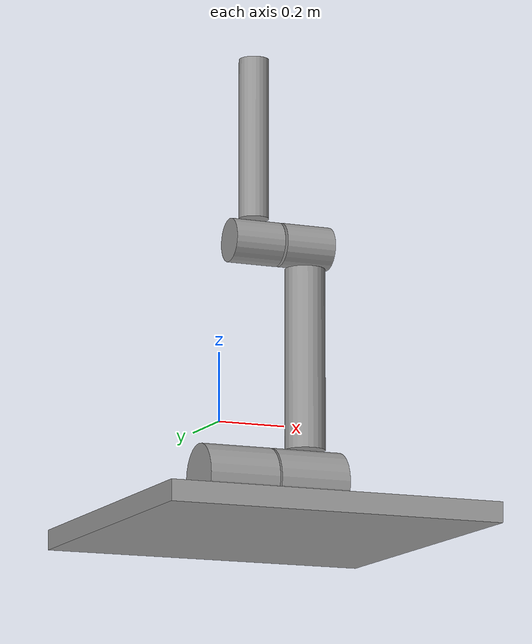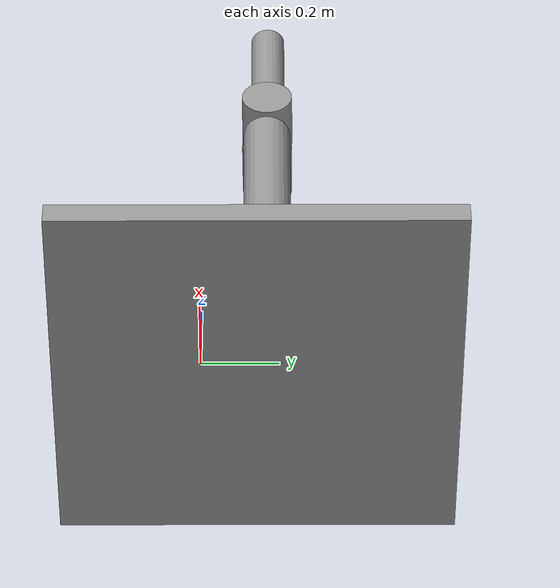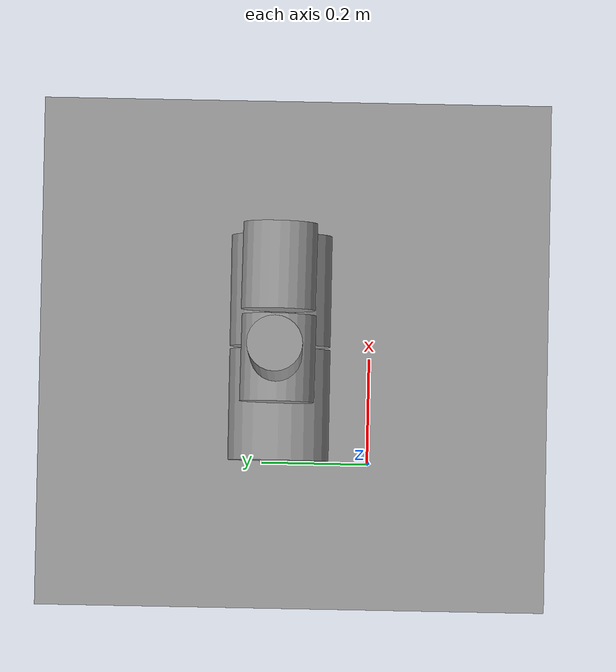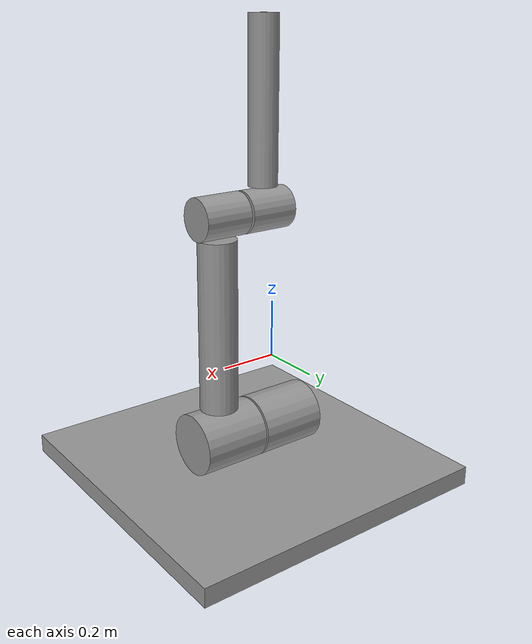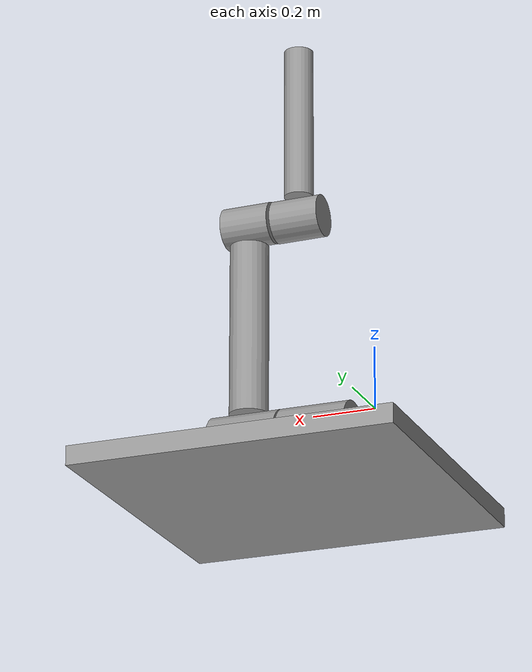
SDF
<?xml version='1.0'?>
<sdf version='1.6'>
  <model name='Arm'>
    <link name='link_0'>
      <inertial>
        <mass>10000</mass>
        <inertia>
          <ixx>836.333</ixx>
          <ixy>0</ixy>
          <ixz>0</ixz>
          <iyy>836.333</iyy>
          <iyz>0</iyz>
          <izz>1666.67</izz>
        </inertia>
        <pose frame=''>0 0 0 0 -0 0</pose>
      </inertial>
      <pose frame=''>0.216756 0.143753 -0.267273 0 -0 0</pose>
      <gravity>1</gravity>
      <self_collide>0</self_collide>
      <kinematic>0</kinematic>
      <enable_wind>0</enable_wind>
      <visual name='visual'>
        <pose frame=''>0 0 0 0 -0 0</pose>
        <geometry>
          <box>
            <size>1 1 0.06</size>
          </box>
        </geometry>
        <material>
          <lighting>1</lighting>
          <script>
            <uri>file://media/materials/scripts/gazebo.material</uri>
            <name>Gazebo/Grey</name>
          </script>
          <shader type='vertex'>
            <normal_map>__default__</normal_map>
          </shader>
          <ambient>0.3 0.3 0.3 1</ambient>
          <diffuse>0.7 0.7 0.7 1</diffuse>
          <specular>0.01 0.01 0.01 1</specular>
          <emissive>0 0 0 1</emissive>
        </material>
        <transparency>0</transparency>
        <cast_shadows>1</cast_shadows>
      </visual>
      <collision name='collision'>
        <laser_retro>0</laser_retro>
        <max_contacts>10</max_contacts>
        <pose frame=''>0 0 0 0 -0 0</pose>
        <geometry>
          <box>
            <size>1 1 0.06</size>
          </box>
        </geometry>
        <surface>
          <friction>
            <ode>
              <mu>1</mu>
              <mu2>1</mu2>
              <fdir1>0 0 0</fdir1>
              <slip1>0</slip1>
              <slip2>0</slip2>
            </ode>
            <torsional>
              <coefficient>1</coefficient>
              <patch_radius>0</patch_radius>
              <surface_radius>0</surface_radius>
              <use_patch_radius>1</use_patch_radius>
              <ode>
                <slip>0</slip>
              </ode>
            </torsional>
          </friction>
          <bounce>
            <restitution_coefficient>0</restitution_coefficient>
            <threshold>1e+06</threshold>
          </bounce>
          <contact>
            <collide_without_contact>0</collide_without_contact>
            <collide_without_contact_bitmask>1</collide_without_contact_bitmask>
            <collide_bitmask>1</collide_bitmask>
            <ode>
              <soft_cfm>0</soft_cfm>
              <soft_erp>0.2</soft_erp>
              <kp>1e+13</kp>
              <kd>1</kd>
              <max_vel>0.01</max_vel>
              <min_depth>0</min_depth>
            </ode>
            <bullet>
              <split_impulse>1</split_impulse>
              <split_impulse_penetration_threshold>-0.01</split_impulse_penetration_threshold>
              <soft_cfm>0</soft_cfm>
              <soft_erp>0.2</soft_erp>
              <kp>1e+13</kp>
              <kd>1</kd>
            </bullet>
          </contact>
        </surface>
      </collision>
    </link>
    <link name='link_1'>
      <inertial>
        <mass>3.395</mass>
        <inertia>
          <ixx>0.495104</ixx>
          <ixy>0</ixy>
          <ixz>0</ixz>
          <iyy>0.495104</iyy>
          <iyz>0</iyz>
          <izz>0.424375</izz>
        </inertia>
        <pose frame=''>0 0 0 0 -0 0</pose>
      </inertial>
      <pose frame=''>0.340908 0.169744 0.239161 0 -0 0</pose>
      <gravity>1</gravity>
      <self_collide>0</self_collide>
      <kinematic>0</kinematic>
      <enable_wind>0</enable_wind>
      <visual name='visual'>
        <pose frame=''>0 0 0 0 -0 0</pose>
        <geometry>
          <cylinder>
            <radius>0.06</radius>
            <length>0.542</length>
          </cylinder>
        </geometry>
        <material>
          <lighting>1</lighting>
          <script>
            <uri>file://media/materials/scripts/gazebo.material</uri>
            <name>Gazebo/Grey</name>
          </script>
          <shader type='vertex'>
            <normal_map>__default__</normal_map>
          </shader>
          <ambient>0.3 0.3 0.3 1</ambient>
          <diffuse>0.7 0.7 0.7 1</diffuse>
          <specular>0.01 0.01 0.01 1</specular>
          <emissive>0 0 0 1</emissive>
        </material>
        <transparency>0</transparency>
        <cast_shadows>1</cast_shadows>
      </visual>
      <collision name='collision'>
        <laser_retro>0</laser_retro>
        <max_contacts>10</max_contacts>
        <pose frame=''>0 0 0 0 -0 0</pose>
        <geometry>
          <cylinder>
            <radius>0.06</radius>
            <length>0.542</length>
          </cylinder>
        </geometry>
        <surface>
          <friction>
            <ode>
              <mu>1</mu>
              <mu2>1</mu2>
              <fdir1>0 0 0</fdir1>
              <slip1>0</slip1>
              <slip2>0</slip2>
            </ode>
            <torsional>
              <coefficient>1</coefficient>
              <patch_radius>0</patch_radius>
              <surface_radius>0</surface_radius>
              <use_patch_radius>1</use_patch_radius>
              <ode>
                <slip>0</slip>
              </ode>
            </torsional>
          </friction>
          <bounce>
            <restitution_coefficient>0</restitution_coefficient>
            <threshold>1e+06</threshold>
          </bounce>
          <contact>
            <collide_without_contact>0</collide_without_contact>
            <collide_without_contact_bitmask>1</collide_without_contact_bitmask>
            <collide_bitmask>1</collide_bitmask>
            <ode>
              <soft_cfm>0</soft_cfm>
              <soft_erp>0.2</soft_erp>
              <kp>1e+13</kp>
              <kd>1</kd>
              <max_vel>0.01</max_vel>
              <min_depth>0</min_depth>
            </ode>
            <bullet>
              <split_impulse>1</split_impulse>
              <split_impulse_penetration_threshold>-0.01</split_impulse_penetration_threshold>
              <soft_cfm>0</soft_cfm>
              <soft_erp>0.2</soft_erp>
              <kp>1e+13</kp>
              <kd>1</kd>
            </bullet>
          </contact>
        </surface>
      </collision>
    </link>
    <link name='link_2'>
      <inertial>
        <mass>1.62</mass>
        <inertia>
          <ixx>0.0329037</ixx>
          <ixy>0</ixy>
          <ixz>0</ixz>
          <iyy>0.0329037</iyy>
          <iyz>0</iyz>
          <izz>0.00164025</izz>
        </inertia>
        <pose frame=''>0 0 0 0 -0 0</pose>
      </inertial>
      <pose frame=''>0.178511 0.173525 0.892871 0 -0 0</pose>
      <gravity>1</gravity>
      <self_collide>0</self_collide>
      <kinematic>0</kinematic>
      <enable_wind>0</enable_wind>
      <visual name='visual'>
        <pose frame=''>0 0 0 0 -0 0</pose>
        <geometry>
          <cylinder>
            <radius>0.045</radius>
            <length>0.4875</length>
          </cylinder>
        </geometry>
        <material>
          <lighting>1</lighting>
          <script>
            <uri>file://media/materials/scripts/gazebo.material</uri>
            <name>Gazebo/Grey</name>
          </script>
          <shader type='vertex'>
            <normal_map>__default__</normal_map>
          </shader>
          <ambient>0.3 0.3 0.3 1</ambient>
          <diffuse>0.7 0.7 0.7 1</diffuse>
          <specular>0.01 0.01 0.01 1</specular>
          <emissive>0 0 0 1</emissive>
        </material>
        <transparency>0</transparency>
        <cast_shadows>1</cast_shadows>
      </visual>
      <collision name='collision'>
        <laser_retro>0</laser_retro>
        <max_contacts>10</max_contacts>
        <pose frame=''>0 0 0 0 -0 0</pose>
        <geometry>
          <cylinder>
            <radius>0.045</radius>
            <length>0.4875</length>
          </cylinder>
        </geometry>
        <surface>
          <friction>
            <ode>
              <mu>1</mu>
              <mu2>1</mu2>
              <fdir1>0 0 0</fdir1>
              <slip1>0</slip1>
              <slip2>0</slip2>
            </ode>
            <torsional>
              <coefficient>1</coefficient>
              <patch_radius>0</patch_radius>
              <surface_radius>0</surface_radius>
              <use_patch_radius>1</use_patch_radius>
              <ode>
                <slip>0</slip>
              </ode>
            </torsional>
          </friction>
          <bounce>
            <restitution_coefficient>0</restitution_coefficient>
            <threshold>1e+06</threshold>
          </bounce>
          <contact>
            <collide_without_contact>0</collide_without_contact>
            <collide_without_contact_bitmask>1</collide_without_contact_bitmask>
            <collide_bitmask>1</collide_bitmask>
            <ode>
              <soft_cfm>0</soft_cfm>
              <soft_erp>0.2</soft_erp>
              <kp>1e+13</kp>
              <kd>1</kd>
              <max_vel>0.01</max_vel>
              <min_depth>0</min_depth>
            </ode>
            <bullet>
              <split_impulse>1</split_impulse>
              <split_impulse_penetration_threshold>-0.01</split_impulse_penetration_threshold>
              <soft_cfm>0</soft_cfm>
              <soft_erp>0.2</soft_erp>
              <kp>1e+13</kp>
              <kd>1</kd>
            </bullet>
          </contact>
        </surface>
      </collision>
    </link>
    <model name='GrossesGelenk'>
      <link name='GrossesGelenk1'>
        <inertial>
          <mass>13</mass>
          <inertia>
            <ixx>1.89583</ixx>
            <ixy>0</ixy>
            <ixz>0</ixz>
            <iyy>1.89583</iyy>
            <iyz>0</iyz>
            <izz>1.625</izz>
          </inertia>
          <pose frame=''>0 0 0 0 -0 0</pose>
        </inertial>
        <pose frame=''>-0.1105 0 0 3.13788 1.57079 3.13788</pose>
        <gravity>1</gravity>
        <self_collide>0</self_collide>
        <kinematic>0</kinematic>
        <enable_wind>0</enable_wind>
        <visual name='visual'>
          <pose frame=''>0 0 0 0 -0 0</pose>
          <geometry>
            <cylinder>
              <radius>0.0975</radius>
              <length>0.215</length>
            </cylinder>
          </geometry>
          <material>
            <lighting>1</lighting>
            <script>
              <uri>file://media/materials/scripts/gazebo.material</uri>
              <name>Gazebo/Grey</name>
            </script>
            <shader type='vertex'>
              <normal_map>__default__</normal_map>
            </shader>
            <ambient>0.3 0.3 0.3 1</ambient>
            <diffuse>0.7 0.7 0.7 1</diffuse>
            <specular>0.01 0.01 0.01 1</specular>
            <emissive>0 0 0 1</emissive>
          </material>
          <transparency>0</transparency>
          <cast_shadows>1</cast_shadows>
        </visual>
        <collision name='collision'>
          <laser_retro>0</laser_retro>
          <max_contacts>10</max_contacts>
          <pose frame=''>0 0 0 0 -0 0</pose>
          <geometry>
            <cylinder>
              <radius>0.0975</radius>
              <length>0.215</length>
            </cylinder>
          </geometry>
          <surface>
            <friction>
              <ode>
                <mu>1</mu>
                <mu2>1</mu2>
                <fdir1>0 0 0</fdir1>
                <slip1>0</slip1>
                <slip2>0</slip2>
              </ode>
              <torsional>
                <coefficient>1</coefficient>
                <patch_radius>0</patch_radius>
                <surface_radius>0</surface_radius>
                <use_patch_radius>1</use_patch_radius>
                <ode>
                  <slip>0</slip>
                </ode>
              </torsional>
            </friction>
            <bounce>
              <restitution_coefficient>0</restitution_coefficient>
              <threshold>1e+06</threshold>
            </bounce>
            <contact>
              <collide_without_contact>0</collide_without_contact>
              <collide_without_contact_bitmask>1</collide_without_contact_bitmask>
              <collide_bitmask>1</collide_bitmask>
              <ode>
                <soft_cfm>0</soft_cfm>
                <soft_erp>0.2</soft_erp>
                <kp>1e+13</kp>
                <kd>1</kd>
                <max_vel>0.01</max_vel>
                <min_depth>0</min_depth>
              </ode>
              <bullet>
                <split_impulse>1</split_impulse>
                <split_impulse_penetration_threshold>-0.01</split_impulse_penetration_threshold>
                <soft_cfm>0</soft_cfm>
                <soft_erp>0.2</soft_erp>
                <kp>1e+13</kp>
                <kd>1</kd>
              </bullet>
            </contact>
          </surface>
        </collision>
      </link>
      <link name='GrossesGelenk2'>
        <inertial>
          <mass>13</mass>
          <inertia>
            <ixx>1.89583</ixx>
            <ixy>0</ixy>
            <ixz>0</ixz>
            <iyy>1.89583</iyy>
            <iyz>0</iyz>
            <izz>1.625</izz>
          </inertia>
          <pose frame=''>0 0 0 0 -0 0</pose>
        </inertial>
        <pose frame=''>0.1105 -0 -0 3.13357 1.57079 3.13357</pose>
        <gravity>1</gravity>
        <self_collide>0</self_collide>
        <kinematic>0</kinematic>
        <enable_wind>0</enable_wind>
        <visual name='visual'>
          <pose frame=''>0 0 0 0 -0 0</pose>
          <geometry>
            <cylinder>
              <radius>0.0975</radius>
              <length>0.215</length>
            </cylinder>
          </geometry>
          <material>
            <lighting>1</lighting>
            <script>
              <uri>file://media/materials/scripts/gazebo.material</uri>
              <name>Gazebo/Grey</name>
            </script>
            <shader type='vertex'>
              <normal_map>__default__</normal_map>
            </shader>
            <ambient>0.3 0.3 0.3 1</ambient>
            <diffuse>0.7 0.7 0.7 1</diffuse>
            <specular>0.01 0.01 0.01 1</specular>
            <emissive>0 0 0 1</emissive>
          </material>
          <transparency>0</transparency>
          <cast_shadows>1</cast_shadows>
        </visual>
        <collision name='collision'>
          <laser_retro>0</laser_retro>
          <max_contacts>10</max_contacts>
          <pose frame=''>0 0 0 0 -0 0</pose>
          <geometry>
            <cylinder>
              <radius>0.0975</radius>
              <length>0.215</length>
            </cylinder>
          </geometry>
          <surface>
            <friction>
              <ode>
                <mu>1</mu>
                <mu2>1</mu2>
                <fdir1>0 0 0</fdir1>
                <slip1>0</slip1>
                <slip2>0</slip2>
              </ode>
              <torsional>
                <coefficient>1</coefficient>
                <patch_radius>0</patch_radius>
                <surface_radius>0</surface_radius>
                <use_patch_radius>1</use_patch_radius>
                <ode>
                  <slip>0</slip>
                </ode>
              </torsional>
            </friction>
            <bounce>
              <restitution_coefficient>0</restitution_coefficient>
              <threshold>1e+06</threshold>
            </bounce>
            <contact>
              <collide_without_contact>0</collide_without_contact>
              <collide_without_contact_bitmask>1</collide_without_contact_bitmask>
              <collide_bitmask>1</collide_bitmask>
              <ode>
                <soft_cfm>0</soft_cfm>
                <soft_erp>0.2</soft_erp>
                <kp>1e+13</kp>
                <kd>1</kd>
                <max_vel>0.01</max_vel>
                <min_depth>0</min_depth>
              </ode>
              <bullet>
                <split_impulse>1</split_impulse>
                <split_impulse_penetration_threshold>-0.01</split_impulse_penetration_threshold>
                <soft_cfm>0</soft_cfm>
                <soft_erp>0.2</soft_erp>
                <kp>1e+13</kp>
                <kd>1</kd>
              </bullet>
            </contact>
          </surface>
        </collision>
      </link>
      <joint name='GrossesGelenkLink' type='revolute'>
        <parent>GrossesGelenk1</parent>
        <child>GrossesGelenk2</child>
        <pose frame=''>-0 0 -0.12 0 -0 0</pose>
        <axis>
          <xyz>0 0 1</xyz>
          <use_parent_model_frame>0</use_parent_model_frame>
          <limit>
            <lower>-1.79769e+308</lower>
            <upper>1.79769e+308</upper>
            <effort>-1</effort>
            <velocity>-1</velocity>
          </limit>
          <dynamics>
            <spring_reference>0</spring_reference>
            <spring_stiffness>0</spring_stiffness>
            <damping>0</damping>
            <friction>0</friction>
          </dynamics>
        </axis>
        <physics>
          <ode>
            <limit>
              <cfm>0</cfm>
              <erp>0.2</erp>
            </limit>
            <suspension>
              <cfm>0</cfm>
              <erp>0.2</erp>
            </suspension>
          </ode>
        </physics>
      </joint>
      <static>0</static>
      <allow_auto_disable>1</allow_auto_disable>
      <pose frame=''>0.224339 0.170369 -0.131128 0 -0 0</pose>
    </model>
    <model name='MittleresGelenk'>
      <link name='MittleresGelenk1'>
        <inertial>
          <mass>5.27</mass>
          <inertia>
            <ixx>1.89583</ixx>
            <ixy>0</ixy>
            <ixz>0</ixz>
            <iyy>1.89583</iyy>
            <iyz>0</iyz>
            <izz>1.625</izz>
          </inertia>
          <pose frame=''>0 0 0 0 -0 0</pose>
        </inertial>
        <pose frame=''>-0.1105 0 -0 3.01682 1.56535 3.00517</pose>
        <gravity>1</gravity>
        <self_collide>0</self_collide>
        <kinematic>0</kinematic>
        <enable_wind>0</enable_wind>
        <visual name='visual'>
          <pose frame=''>0 0 0 0 -0 0</pose>
          <geometry>
            <cylinder>
              <radius>0.065</radius>
              <length>0.152</length>
            </cylinder>
          </geometry>
          <material>
            <lighting>1</lighting>
            <script>
              <uri>file://media/materials/scripts/gazebo.material</uri>
              <name>Gazebo/Grey</name>
            </script>
            <shader type='vertex'>
              <normal_map>__default__</normal_map>
            </shader>
            <ambient>0.3 0.3 0.3 1</ambient>
            <diffuse>0.7 0.7 0.7 1</diffuse>
            <specular>0.01 0.01 0.01 1</specular>
            <emissive>0 0 0 1</emissive>
          </material>
          <transparency>0</transparency>
          <cast_shadows>1</cast_shadows>
        </visual>
        <collision name='collision'>
          <laser_retro>0</laser_retro>
          <max_contacts>10</max_contacts>
          <pose frame=''>0 0 0 0 -0 0</pose>
          <geometry>
            <cylinder>
              <radius>0.065</radius>
              <length>0.152</length>
            </cylinder>
          </geometry>
          <surface>
            <friction>
              <ode>
                <mu>1</mu>
                <mu2>1</mu2>
                <fdir1>0 0 0</fdir1>
                <slip1>0</slip1>
                <slip2>0</slip2>
              </ode>
              <torsional>
                <coefficient>1</coefficient>
                <patch_radius>0</patch_radius>
                <surface_radius>0</surface_radius>
                <use_patch_radius>1</use_patch_radius>
                <ode>
                  <slip>0</slip>
                </ode>
              </torsional>
            </friction>
            <bounce>
              <restitution_coefficient>0</restitution_coefficient>
              <threshold>1e+06</threshold>
            </bounce>
            <contact>
              <collide_without_contact>0</collide_without_contact>
              <collide_without_contact_bitmask>1</collide_without_contact_bitmask>
              <collide_bitmask>1</collide_bitmask>
              <ode>
                <soft_cfm>0</soft_cfm>
                <soft_erp>0.2</soft_erp>
                <kp>1e+13</kp>
                <kd>1</kd>
                <max_vel>0.01</max_vel>
                <min_depth>0</min_depth>
              </ode>
              <bullet>
                <split_impulse>1</split_impulse>
                <split_impulse_penetration_threshold>-0.01</split_impulse_penetration_threshold>
                <soft_cfm>0</soft_cfm>
                <soft_erp>0.2</soft_erp>
                <kp>1e+13</kp>
                <kd>1</kd>
              </bullet>
            </contact>
          </surface>
        </collision>
      </link>
      <link name='MittleresGelenk2'>
        <inertial>
          <mass>5.27</mass>
          <inertia>
            <ixx>1.89583</ixx>
            <ixy>0</ixy>
            <ixz>0</ixz>
            <iyy>1.89583</iyy>
            <iyz>0</iyz>
            <izz>1.625</izz>
          </inertia>
          <pose frame=''>0 0 0 0 -0 0</pose>
        </inertial>
        <pose frame=''>0.0505 -0 -0 3.01682 1.56535 3.00517</pose>
        <gravity>1</gravity>
        <self_collide>0</self_collide>
        <kinematic>0</kinematic>
        <enable_wind>0</enable_wind>
        <visual name='visual'>
          <pose frame=''>0 0 0 0 -0 0</pose>
          <geometry>
            <cylinder>
              <radius>0.065</radius>
              <length>0.152</length>
            </cylinder>
          </geometry>
          <material>
            <lighting>1</lighting>
            <script>
              <uri>file://media/materials/scripts/gazebo.material</uri>
              <name>Gazebo/Grey</name>
            </script>
            <shader type='vertex'>
              <normal_map>__default__</normal_map>
            </shader>
            <ambient>0.3 0.3 0.3 1</ambient>
            <diffuse>0.7 0.7 0.7 1</diffuse>
            <specular>0.01 0.01 0.01 1</specular>
            <emissive>0 0 0 1</emissive>
          </material>
          <transparency>0</transparency>
          <cast_shadows>1</cast_shadows>
        </visual>
        <collision name='collision'>
          <laser_retro>0</laser_retro>
          <max_contacts>10</max_contacts>
          <pose frame=''>0 0 0 0 -0 0</pose>
          <geometry>
            <cylinder>
              <radius>0.065</radius>
              <length>0.152</length>
            </cylinder>
          </geometry>
          <surface>
            <friction>
              <ode>
                <mu>1</mu>
                <mu2>1</mu2>
                <fdir1>0 0 0</fdir1>
                <slip1>0</slip1>
                <slip2>0</slip2>
              </ode>
              <torsional>
                <coefficient>1</coefficient>
                <patch_radius>0</patch_radius>
                <surface_radius>0</surface_radius>
                <use_patch_radius>1</use_patch_radius>
                <ode>
                  <slip>0</slip>
                </ode>
              </torsional>
            </friction>
            <bounce>
              <restitution_coefficient>0</restitution_coefficient>
              <threshold>1e+06</threshold>
            </bounce>
            <contact>
              <collide_without_contact>0</collide_without_contact>
              <collide_without_contact_bitmask>1</collide_without_contact_bitmask>
              <collide_bitmask>1</collide_bitmask>
              <ode>
                <soft_cfm>0</soft_cfm>
                <soft_erp>0.2</soft_erp>
                <kp>1e+13</kp>
                <kd>1</kd>
                <max_vel>0.01</max_vel>
                <min_depth>0</min_depth>
              </ode>
              <bullet>
                <split_impulse>1</split_impulse>
                <split_impulse_penetration_threshold>-0.01</split_impulse_penetration_threshold>
                <soft_cfm>0</soft_cfm>
                <soft_erp>0.2</soft_erp>
                <kp>1e+13</kp>
                <kd>1</kd>
              </bullet>
            </contact>
          </surface>
        </collision>
      </link>
      <joint name='MittleresGelenkLink' type='revolute'>
        <parent>MittleresGelenk1</parent>
        <child>MittleresGelenk2</child>
        <pose frame=''>-0 0 -0.12 0 -0 0</pose>
        <axis>
          <xyz>0 0 1</xyz>
          <use_parent_model_frame>0</use_parent_model_frame>
          <limit>
            <lower>-1.79769e+308</lower>
            <upper>1.79769e+308</upper>
            <effort>-1</effort>
            <velocity>-1</velocity>
          </limit>
          <dynamics>
            <spring_reference>0</spring_reference>
            <spring_stiffness>0</spring_stiffness>
            <damping>0</damping>
            <friction>0</friction>
          </dynamics>
        </axis>
        <physics>
          <ode>
            <limit>
              <cfm>0</cfm>
              <erp>0.2</erp>
            </limit>
            <suspension>
              <cfm>0</cfm>
              <erp>0.2</erp>
            </suspension>
          </ode>
        </physics>
      </joint>
      <static>0</static>
      <allow_auto_disable>1</allow_auto_disable>
      <pose frame=''>0.286665 0.170603 0.577798 0 -0 0</pose>
    </model>
    <joint name='GrossesGelenk1_JOINT_0' type='revolute'>
      <parent>GrossesGelenk::GrossesGelenk1</parent>
      <child>link_0</child>
      <pose frame=''>-0.11 0.02 0 0 -0 0</pose>
      <axis>
        <xyz>0 0 1</xyz>
        <use_parent_model_frame>0</use_parent_model_frame>
        <limit>
          <lower>-1.79769e+308</lower>
          <upper>1.79769e+308</upper>
          <effort>-1</effort>
          <velocity>-1</velocity>
        </limit>
        <dynamics>
          <spring_reference>0</spring_reference>
          <spring_stiffness>0</spring_stiffness>
          <damping>0</damping>
          <friction>0</friction>
        </dynamics>
      </axis>
      <physics>
        <ode>
          <limit>
            <cfm>0</cfm>
            <erp>0.2</erp>
          </limit>
          <suspension>
            <cfm>0</cfm>
            <erp>0.2</erp>
          </suspension>
        </ode>
      </physics>
    </joint>
    <joint name='GrossesGelenk2_JOINT_1' type='fixed'>
      <parent>GrossesGelenk::GrossesGelenk2</parent>
      <child>link_1</child>
      <pose frame=''>0 0 -0.27 0 -0 0</pose>
      <physics>
        <ode>
          <limit>
            <cfm>0</cfm>
            <erp>0.2</erp>
          </limit>
          <suspension>
            <cfm>0</cfm>
            <erp>0.2</erp>
          </suspension>
        </ode>
      </physics>
    </joint>
    <joint name='MittleresGelenk2_JOINT_2' type='fixed'>
      <parent>MittleresGelenk::MittleresGelenk2</parent>
      <child>link_1</child>
      <pose frame=''>0 0 0 0 -0 0</pose>
      <physics>
        <ode>
          <limit>
            <cfm>0</cfm>
            <erp>0.2</erp>
          </limit>
          <suspension>
            <cfm>0</cfm>
            <erp>0.2</erp>
          </suspension>
        </ode>
      </physics>
    </joint>
    <joint name='link_2_JOINT_3' type='revolute'>
      <parent>link_2</parent>
      <child>MittleresGelenk::MittleresGelenk1</child>
      <pose frame=''>-0.07 0 0 0 -0 0</pose>
      <axis>
        <xyz>1 0 0</xyz>
        <use_parent_model_frame>0</use_parent_model_frame>
        <limit>
          <lower>-1.79769e+308</lower>
          <upper>1.79769e+308</upper>
          <effort>-1</effort>
          <velocity>-1</velocity>
        </limit>
        <dynamics>
          <spring_reference>0</spring_reference>
          <spring_stiffness>0</spring_stiffness>
          <damping>0</damping>
        </dynamics>
      </axis>
      <physics>
        <ode>
          <limit>
            <cfm>0</cfm>
            <erp>0.2</erp>
          </limit>
          <suspension>
            <cfm>0</cfm>
            <erp>0.2</erp>
          </suspension>
        </ode>
      </physics>
    </joint>
    <static>0</static>
    <allow_auto_disable>1</allow_auto_disable>
    <plugin name='plugin' filename='plugin.cc'/>
  </model>
</sdf>
